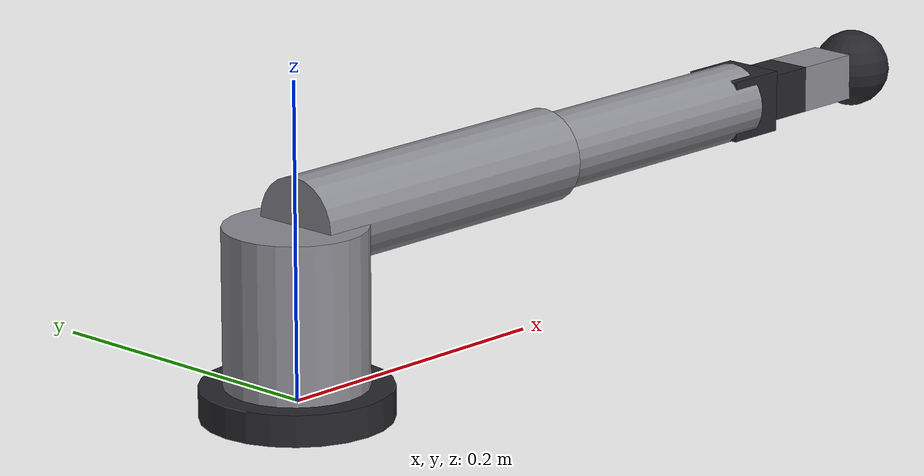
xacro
<?xml version="1.0"?>
<robot name="sixeyes" xmlns:xacro="http://www.ros.org/wiki/xacro">

  <xacro:property name="stepper_effort" value="6.5" />    <!-- N.m, single NEMA17 at 1:25 (waist/elbow), see GEARBOX_TORQUE_BUDGET.md -->
  <xacro:property name="shoulder_effort" value="13.0" />  <!-- N.m, two NEMA17 sharing one 1:25 gearbox -->
  <xacro:property name="stepper_velocity" value="1.0" />  <!-- rad/s placeholder; 1:25 reduction is slow -->
  <xacro:property name="servo_effort" value="1.2" />      <!-- N.m, representative MG996R stall torque estimate -->
  <xacro:property name="servo_velocity" value="3.0" />    <!-- rad/s, placeholder -->

  <material name="sixeyes_grey">
    <color rgba="0.55 0.55 0.58 1.0" />
  </material>
  <material name="sixeyes_dark">
    <color rgba="0.15 0.15 0.17 1.0" />
  </material>

  <xacro:macro name="box_inertial" params="mass x y z">
    <inertial>
      <mass value="${mass}" />
      <inertia
        ixx="${mass/12.0*(y*y+z*z)}" ixy="0.0" ixz="0.0"
        iyy="${mass/12.0*(x*x+z*z)}" iyz="0.0"
        izz="${mass/12.0*(x*x+y*y)}" />
    </inertial>
  </xacro:macro>

  <!-- Base -->
  <link name="base_link">
    <visual>
      <geometry><cylinder radius="0.06" length="0.02" /></geometry>
      <material name="sixeyes_dark" />
    </visual>
    <collision>
      <geometry><cylinder radius="0.06" length="0.02" /></geometry>
    </collision>
    <xacro:box_inertial mass="0.4" x="0.12" y="0.12" z="0.02" />
  </link>

  <!-- Waist (Base CAN node) -->
  <link name="waist_link">
    <visual>
      <origin xyz="0 0 0.05" />
      <geometry><cylinder radius="0.045" length="0.10" /></geometry>
      <material name="sixeyes_grey" />
    </visual>
    <collision>
      <origin xyz="0 0 0.05" />
      <geometry><cylinder radius="0.045" length="0.10" /></geometry>
    </collision>
    <xacro:box_inertial mass="0.3" x="0.09" y="0.09" z="0.10" />
  </link>

  <joint name="waist_joint" type="revolute">
    <parent link="base_link" />
    <child link="waist_link" />
    <origin xyz="0 0 0.01" rpy="0 0 0" />
    <axis xyz="0 0 1" />
    <limit lower="-3.14159" upper="3.14159" effort="${stepper_effort}" velocity="${stepper_velocity}" />
  </joint>

  <!-- Shoulder: lockstep Shoulder L/R CAN nodes drive this ONE joint -->
  <link name="upper_arm_link">
    <visual>
      <origin xyz="0.11 0 0" rpy="0 1.5708 0" />
      <geometry><cylinder radius="0.03" length="0.22" /></geometry>
      <material name="sixeyes_grey" />
    </visual>
    <collision>
      <origin xyz="0.11 0 0" rpy="0 1.5708 0" />
      <geometry><cylinder radius="0.03" length="0.22" /></geometry>
    </collision>
    <xacro:box_inertial mass="0.25" x="0.22" y="0.06" z="0.06" />
  </link>

  <joint name="shoulder_joint" type="revolute">
    <parent link="waist_link" />
    <child link="upper_arm_link" />
    <origin xyz="0 0 0.10" rpy="0 0 0" />
    <axis xyz="0 1 0" />
    <limit lower="-1.5708" upper="1.5708" effort="${shoulder_effort}" velocity="${stepper_velocity}" />
  </joint>

  <!-- Elbow -->
  <link name="forearm_link">
    <visual>
      <origin xyz="0.09 0 0" rpy="0 1.5708 0" />
      <geometry><cylinder radius="0.025" length="0.18" /></geometry>
      <material name="sixeyes_grey" />
    </visual>
    <collision>
      <origin xyz="0.09 0 0" rpy="0 1.5708 0" />
      <geometry><cylinder radius="0.025" length="0.18" /></geometry>
    </collision>
    <xacro:box_inertial mass="0.18" x="0.18" y="0.05" z="0.05" />
  </link>

  <joint name="elbow_joint" type="revolute">
    <parent link="upper_arm_link" />
    <child link="forearm_link" />
    <origin xyz="0.22 0 0" rpy="0 0 0" />
    <axis xyz="0 1 0" />
    <limit lower="-2.618" upper="2.618" effort="${stepper_effort}" velocity="${stepper_velocity}" />
  </joint>

  <!-- Wrist pitch: open-loop servo -->
  <link name="wrist_pitch_link">
    <visual>
      <geometry><box size="0.04 0.04 0.04" /></geometry>
      <material name="sixeyes_dark" />
    </visual>
    <collision>
      <geometry><box size="0.04 0.04 0.04" /></geometry>
    </collision>
    <xacro:box_inertial mass="0.05" x="0.04" y="0.04" z="0.04" />
  </link>

  <joint name="wrist_pitch_joint" type="revolute">
    <parent link="forearm_link" />
    <child link="wrist_pitch_link" />
    <origin xyz="0.18 0 0" rpy="0 0 0" />
    <axis xyz="0 1 0" />
    <!-- 0-180 deg range, matching legacy ServoManager DEGREES_MIN/MAX -->
    <limit lower="0" upper="3.14159" effort="${servo_effort}" velocity="${servo_velocity}" />
  </joint>

  <!-- Wrist yaw: open-loop servo -->
  <link name="wrist_yaw_link">
    <visual>
      <geometry><box size="0.03 0.03 0.03" /></geometry>
      <material name="sixeyes_dark" />
    </visual>
    <collision>
      <geometry><box size="0.03 0.03 0.03" /></geometry>
    </collision>
    <xacro:box_inertial mass="0.05" x="0.03" y="0.03" z="0.03" />
  </link>

  <joint name="wrist_yaw_joint" type="revolute">
    <parent link="wrist_pitch_link" />
    <child link="wrist_yaw_link" />
    <origin xyz="0.04 0 0" rpy="0 0 0" />
    <axis xyz="1 0 0" />
    <limit lower="0" upper="3.14159" effort="${servo_effort}" velocity="${servo_velocity}" />
  </joint>

  <!-- Gripper: open-loop servo -->
  <link name="gripper_link">
    <visual>
      <geometry><box size="0.06 0.03 0.03" /></geometry>
      <material name="sixeyes_grey" />
    </visual>
    <collision>
      <geometry><box size="0.06 0.03 0.03" /></geometry>
    </collision>
    <xacro:box_inertial mass="0.08" x="0.06" y="0.03" z="0.03" />
  </link>

  <joint name="gripper_joint" type="revolute">
    <parent link="wrist_yaw_link" />
    <child link="gripper_link" />
    <origin xyz="0.03 0 0" rpy="0 0 0" />
    <axis xyz="0 0 1" />
    <!-- open/close range, placeholder, not a real 0-180 sweep like pitch/yaw -->
    <limit lower="0" upper="1.0472" effort="${servo_effort}" velocity="${servo_velocity}" />
  </joint>

  <link name="payload_link">
    <visual>
      <geometry><sphere radius="0.025" /></geometry>
      <material name="sixeyes_dark" />
    </visual>
    <xacro:box_inertial mass="0.5" x="0.05" y="0.05" z="0.05" />
  </link>

  <joint name="payload_joint" type="fixed">
    <parent link="gripper_link" />
    <child link="payload_link" />
    <origin xyz="0.05 0 0" rpy="0 0 0" />
  </joint>

  <ros2_control name="SixEyesSystem" type="system">
    <hardware>
      <plugin>gz_ros2_control/GazeboSimSystem</plugin>
    </hardware>
    <joint name="waist_joint">
      <command_interface name="position">
        <param name="min">-3.14159</param>
        <param name="max">3.14159</param>
      </command_interface>
      <state_interface name="position" />
      <state_interface name="velocity" />
    </joint>
    <joint name="shoulder_joint">
      <command_interface name="position">
        <param name="min">-1.5708</param>
        <param name="max">1.5708</param>
      </command_interface>
      <state_interface name="position" />
      <state_interface name="velocity" />
    </joint>
    <joint name="elbow_joint">
      <command_interface name="position">
        <param name="min">-2.618</param>
        <param name="max">2.618</param>
      </command_interface>
      <state_interface name="position" />
      <state_interface name="velocity" />
    </joint>
    <joint name="wrist_pitch_joint">
      <command_interface name="position">
        <param name="min">0</param>
        <param name="max">3.14159</param>
      </command_interface>
      <state_interface name="position" />
      <state_interface name="velocity" />
    </joint>
    <joint name="wrist_yaw_joint">
      <command_interface name="position">
        <param name="min">0</param>
        <param name="max">3.14159</param>
      </command_interface>
      <state_interface name="position" />
      <state_interface name="velocity" />
    </joint>
    <joint name="gripper_joint">
      <command_interface name="position">
        <param name="min">0</param>
        <param name="max">1.0472</param>
      </command_interface>
      <state_interface name="position" />
      <state_interface name="velocity" />
    </joint>
  </ros2_control>

  <gazebo>
    <plugin filename="gz_ros2_control-system" name="gz_ros2_control::GazeboSimROS2ControlPlugin">
      <parameters>$(find sixeyes_description)/config/sixeyes_controllers.yaml</parameters>
    </plugin>
  </gazebo>

</robot>
